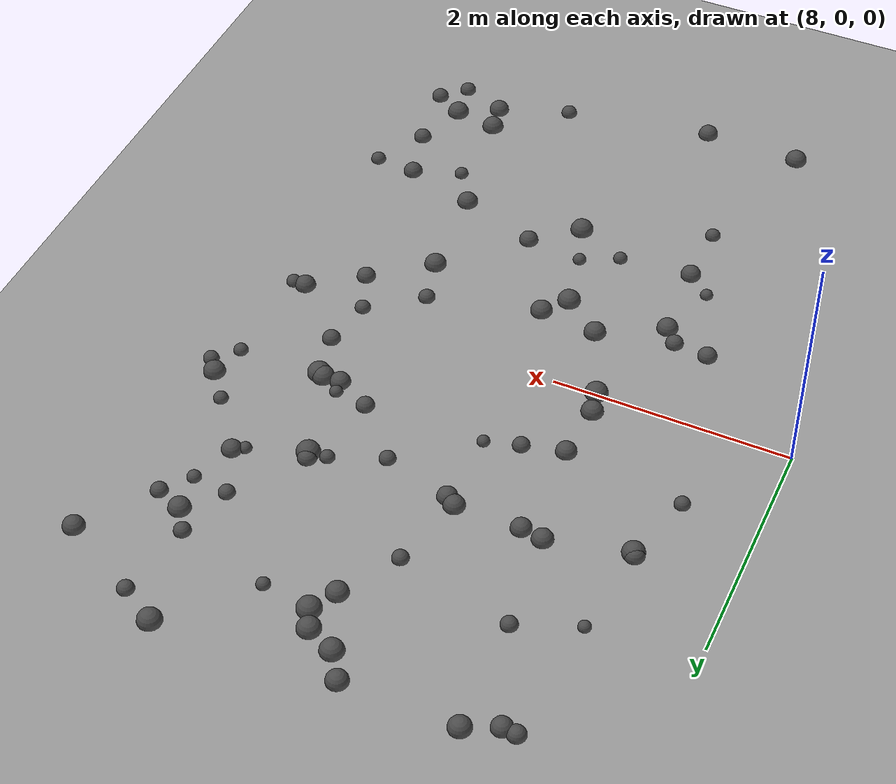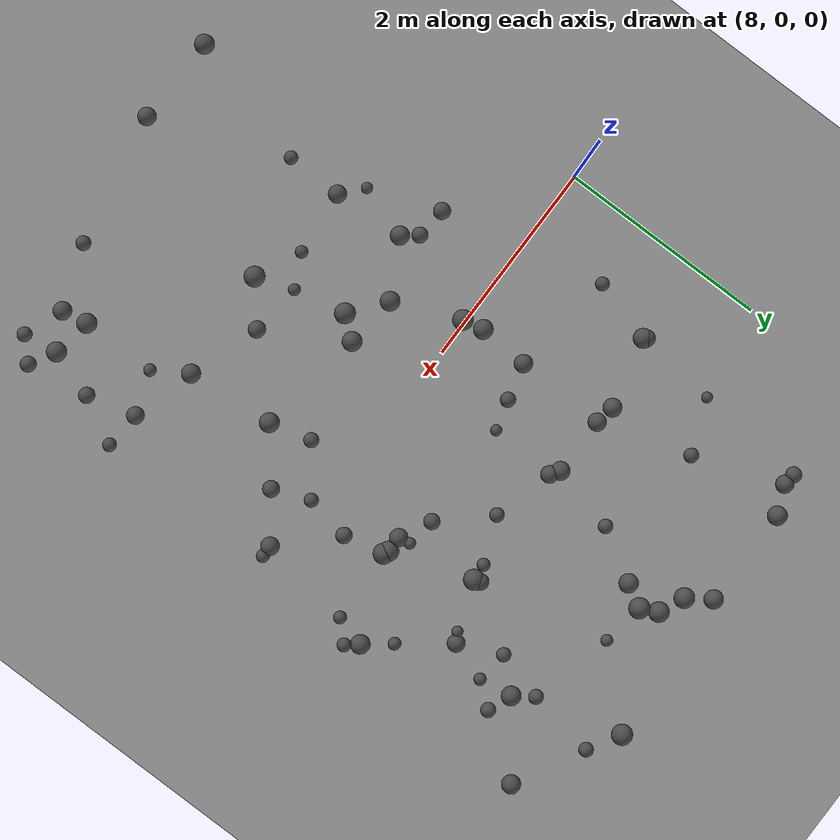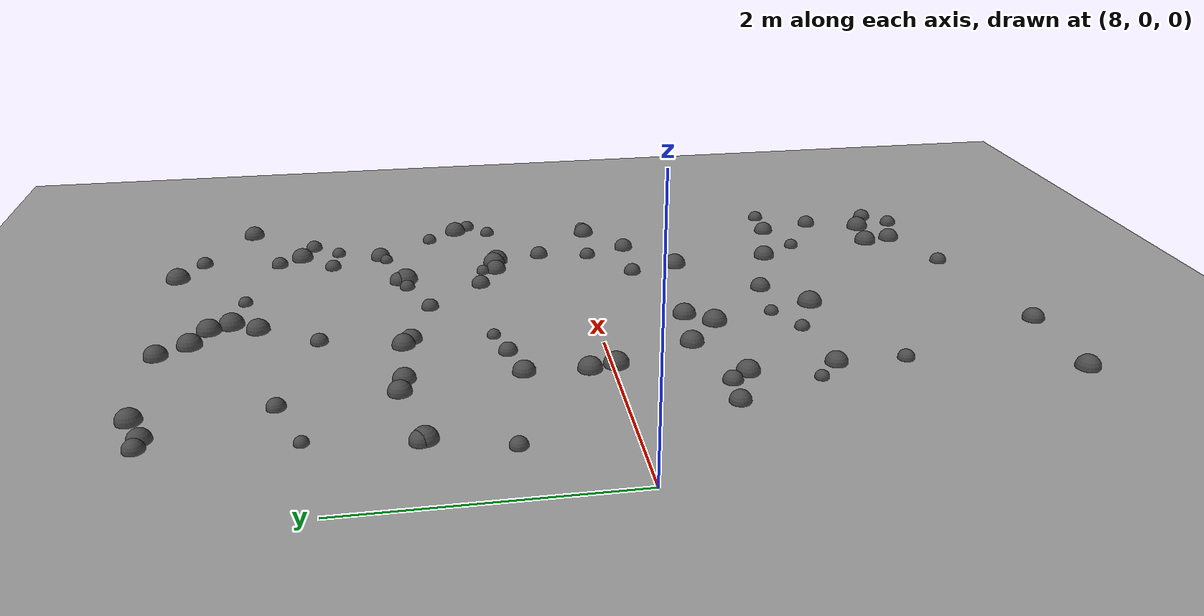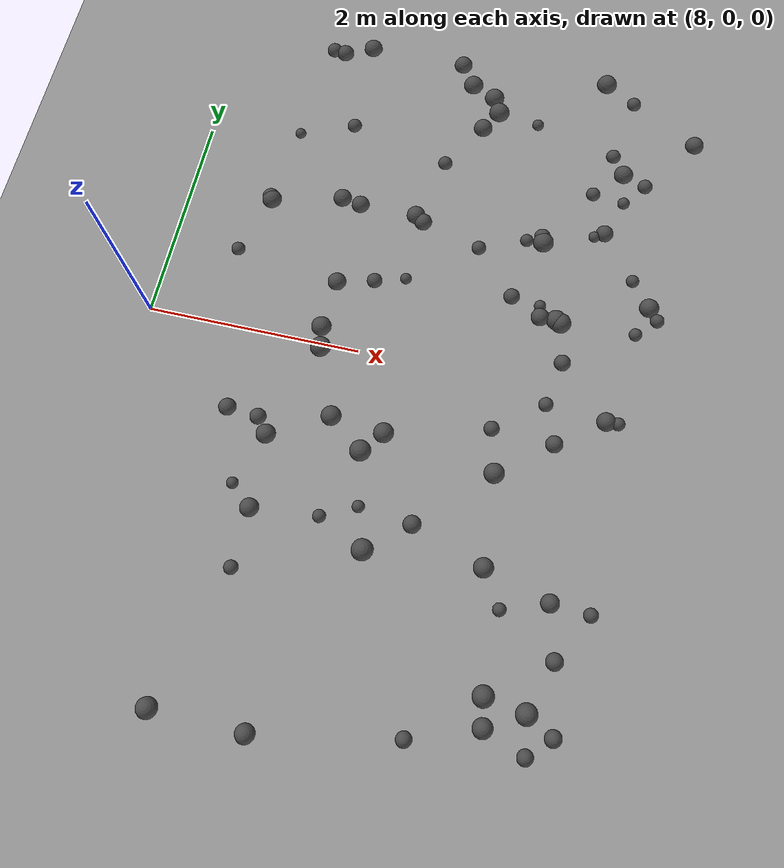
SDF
<sdf version="1.8">
 <world name="bumpy_world">
  <model name="ground_plane">
   <static>true</static>
   <link name="link">
    <collision name="collision">
     <geometry><plane><normal>0 0 1</normal><size>100 100</size></plane></geometry>
    </collision>
    <visual name="visual">
     <geometry><plane><normal>0 0 1</normal><size>100 100</size></plane></geometry>
     <material><ambient>0.6 0.6 0.6 1</ambient><diffuse>0.6 0.6 0.6 1</diffuse></material>
    </visual>
   </link>
  </model>
  <model name="bump_3">
   <static>true</static>
   <pose>11.931157695273809 1.6394047522858175 0.0 0 0 0</pose>
   <link name="link">
    <collision name="collision">
     <geometry><sphere><radius>0.053579488928655966</radius></sphere></geometry>
     <surface><friction><ode><mu>100.0</mu><mu2>100.0</mu2></ode></friction></surface>
    </collision>
    <visual name="visual">
     <geometry><sphere><radius>0.053579488928655966</radius></sphere></geometry>
     <material><ambient>0.3 0.3 0.3 1</ambient><diffuse>0.3 0.3 0.3 1</diffuse></material>
    </visual>
   </link>
  </model>
  <model name="bump_4">
   <static>true</static>
   <pose>12.55489104031081 1.0059284895138196 0.0 0 0 0</pose>
   <link name="link">
    <collision name="collision">
     <geometry><sphere><radius>0.09172294633652742</radius></sphere></geometry>
     <surface><friction><ode><mu>100.0</mu><mu2>100.0</mu2></ode></friction></surface>
    </collision>
    <visual name="visual">
     <geometry><sphere><radius>0.09172294633652742</radius></sphere></geometry>
     <material><ambient>0.3 0.3 0.3 1</ambient><diffuse>0.3 0.3 0.3 1</diffuse></material>
    </visual>
   </link>
  </model>
  <model name="bump_12">
   <static>true</static>
   <pose>11.522102334728567 -1.7018754114444579 0.0 0 0 0</pose>
   <link name="link">
    <collision name="collision">
     <geometry><sphere><radius>0.08945290259393307</radius></sphere></geometry>
     <surface><friction><ode><mu>100.0</mu><mu2>100.0</mu2></ode></friction></surface>
    </collision>
    <visual name="visual">
     <geometry><sphere><radius>0.08945290259393307</radius></sphere></geometry>
     <material><ambient>0.3 0.3 0.3 1</ambient><diffuse>0.3 0.3 0.3 1</diffuse></material>
    </visual>
   </link>
  </model>
  <model name="bump_14">
   <static>true</static>
   <pose>10.643117851737946 2.6129079449877457 0.0 0 0 0</pose>
   <link name="link">
    <collision name="collision">
     <geometry><sphere><radius>0.09134821140151704</radius></sphere></geometry>
     <surface><friction><ode><mu>100.0</mu><mu2>100.0</mu2></ode></friction></surface>
    </collision>
    <visual name="visual">
     <geometry><sphere><radius>0.09134821140151704</radius></sphere></geometry>
     <material><ambient>0.3 0.3 0.3 1</ambient><diffuse>0.3 0.3 0.3 1</diffuse></material>
    </visual>
   </link>
  </model>
  <model name="bump_16">
   <static>true</static>
   <pose>9.421385301899686 -1.6260992034511779 0.0 0 0 0</pose>
   <link name="link">
    <collision name="collision">
     <geometry><sphere><radius>0.08546456388983416</radius></sphere></geometry>
     <surface><friction><ode><mu>100.0</mu><mu2>100.0</mu2></ode></friction></surface>
    </collision>
    <visual name="visual">
     <geometry><sphere><radius>0.08546456388983416</radius></sphere></geometry>
     <material><ambient>0.3 0.3 0.3 1</ambient><diffuse>0.3 0.3 0.3 1</diffuse></material>
    </visual>
   </link>
  </model>
  <model name="bump_18">
   <static>true</static>
   <pose>12.022463642345118 1.693123177917606 0.0 0 0 0</pose>
   <link name="link">
    <collision name="collision">
     <geometry><sphere><radius>0.08342939061276286</radius></sphere></geometry>
     <surface><friction><ode><mu>100.0</mu><mu2>100.0</mu2></ode></friction></surface>
    </collision>
    <visual name="visual">
     <geometry><sphere><radius>0.08342939061276286</radius></sphere></geometry>
     <material><ambient>0.3 0.3 0.3 1</ambient><diffuse>0.3 0.3 0.3 1</diffuse></material>
    </visual>
   </link>
  </model>
  <model name="bump_26">
   <static>true</static>
   <pose>9.975213831209803 0.7341309147829511 0.0 0 0 0</pose>
   <link name="link">
    <collision name="collision">
     <geometry><sphere><radius>0.0721345764446053</radius></sphere></geometry>
     <surface><friction><ode><mu>100.0</mu><mu2>100.0</mu2></ode></friction></surface>
    </collision>
    <visual name="visual">
     <geometry><sphere><radius>0.0721345764446053</radius></sphere></geometry>
     <material><ambient>0.3 0.3 0.3 1</ambient><diffuse>0.3 0.3 0.3 1</diffuse></material>
    </visual>
   </link>
  </model>
  <model name="bump_37">
   <static>true</static>
   <pose>9.37552611108897 2.3650020926075372 0.0 0 0 0</pose>
   <link name="link">
    <collision name="collision">
     <geometry><sphere><radius>0.06940311289779658</radius></sphere></geometry>
     <surface><friction><ode><mu>100.0</mu><mu2>100.0</mu2></ode></friction></surface>
    </collision>
    <visual name="visual">
     <geometry><sphere><radius>0.06940311289779658</radius></sphere></geometry>
     <material><ambient>0.3 0.3 0.3 1</ambient><diffuse>0.3 0.3 0.3 1</diffuse></material>
    </visual>
   </link>
  </model>
  <model name="bump_39">
   <static>true</static>
   <pose>10.765315254485404 2.82722787600013 0.0 0 0 0</pose>
   <link name="link">
    <collision name="collision">
     <geometry><sphere><radius>0.09995415081091778</radius></sphere></geometry>
     <surface><friction><ode><mu>100.0</mu><mu2>100.0</mu2></ode></friction></surface>
    </collision>
    <visual name="visual">
     <geometry><sphere><radius>0.09995415081091778</radius></sphere></geometry>
     <material><ambient>0.3 0.3 0.3 1</ambient><diffuse>0.3 0.3 0.3 1</diffuse></material>
    </visual>
   </link>
  </model>
  <model name="bump_48">
   <static>true</static>
   <pose>10.243681844997505 -0.9185356339324291 0.0 0 0 0</pose>
   <link name="link">
    <collision name="collision">
     <geometry><sphere><radius>0.09749525561380185</radius></sphere></geometry>
     <surface><friction><ode><mu>100.0</mu><mu2>100.0</mu2></ode></friction></surface>
    </collision>
    <visual name="visual">
     <geometry><sphere><radius>0.09749525561380185</radius></sphere></geometry>
     <material><ambient>0.3 0.3 0.3 1</ambient><diffuse>0.3 0.3 0.3 1</diffuse></material>
    </visual>
   </link>
  </model>
  <model name="bump_51">
   <static>true</static>
   <pose>10.685210819470418 2.9885323724850545 0.0 0 0 0</pose>
   <link name="link">
    <collision name="collision">
     <geometry><sphere><radius>0.09602896417148336</radius></sphere></geometry>
     <surface><friction><ode><mu>100.0</mu><mu2>100.0</mu2></ode></friction></surface>
    </collision>
    <visual name="visual">
     <geometry><sphere><radius>0.09602896417148336</radius></sphere></geometry>
     <material><ambient>0.3 0.3 0.3 1</ambient><diffuse>0.3 0.3 0.3 1</diffuse></material>
    </visual>
   </link>
  </model>
  <model name="bump_66">
   <static>true</static>
   <pose>12.345960310114865 -2.9312546135932194 0.0 0 0 0</pose>
   <link name="link">
    <collision name="collision">
     <geometry><sphere><radius>0.07495913389079739</radius></sphere></geometry>
     <surface><friction><ode><mu>100.0</mu><mu2>100.0</mu2></ode></friction></surface>
    </collision>
    <visual name="visual">
     <geometry><sphere><radius>0.07495913389079739</radius></sphere></geometry>
     <material><ambient>0.3 0.3 0.3 1</ambient><diffuse>0.3 0.3 0.3 1</diffuse></material>
    </visual>
   </link>
  </model>
  <model name="bump_67">
   <static>true</static>
   <pose>9.380274728241485 -0.9470037858969937 0.0 0 0 0</pose>
   <link name="link">
    <collision name="collision">
     <geometry><sphere><radius>0.08968003674827485</radius></sphere></geometry>
     <surface><friction><ode><mu>100.0</mu><mu2>100.0</mu2></ode></friction></surface>
    </collision>
    <visual name="visual">
     <geometry><sphere><radius>0.08968003674827485</radius></sphere></geometry>
     <material><ambient>0.3 0.3 0.3 1</ambient><diffuse>0.3 0.3 0.3 1</diffuse></material>
    </visual>
   </link>
  </model>
  <model name="bump_79">
   <static>true</static>
   <pose>8.86918294274917 2.161989821667313 0.0 0 0 0</pose>
   <link name="link">
    <collision name="collision">
     <geometry><sphere><radius>0.05203512853501087</radius></sphere></geometry>
     <surface><friction><ode><mu>100.0</mu><mu2>100.0</mu2></ode></friction></surface>
    </collision>
    <visual name="visual">
     <geometry><sphere><radius>0.05203512853501087</radius></sphere></geometry>
     <material><ambient>0.3 0.3 0.3 1</ambient><diffuse>0.3 0.3 0.3 1</diffuse></material>
    </visual>
   </link>
  </model>
  <model name="bump_81">
   <static>true</static>
   <pose>12.150259302899732 2.062354442706466 0.0 0 0 0</pose>
   <link name="link">
    <collision name="collision">
     <geometry><sphere><radius>0.05849020861925602</radius></sphere></geometry>
     <surface><friction><ode><mu>100.0</mu><mu2>100.0</mu2></ode></friction></surface>
    </collision>
    <visual name="visual">
     <geometry><sphere><radius>0.05849020861925602</radius></sphere></geometry>
     <material><ambient>0.3 0.3 0.3 1</ambient><diffuse>0.3 0.3 0.3 1</diffuse></material>
    </visual>
   </link>
  </model>
  <model name="bump_84">
   <static>true</static>
   <pose>11.16845109739629 -3.195198413123346 0.0 0 0 0</pose>
   <link name="link">
    <collision name="collision">
     <geometry><sphere><radius>0.06951750288032212</radius></sphere></geometry>
     <surface><friction><ode><mu>100.0</mu><mu2>100.0</mu2></ode></friction></surface>
    </collision>
    <visual name="visual">
     <geometry><sphere><radius>0.06951750288032212</radius></sphere></geometry>
     <material><ambient>0.3 0.3 0.3 1</ambient><diffuse>0.3 0.3 0.3 1</diffuse></material>
    </visual>
   </link>
  </model>
  <model name="bump_90">
   <static>true</static>
   <pose>12.470294850923612 0.7114271344372263 0.0 0 0 0</pose>
   <link name="link">
    <collision name="collision">
     <geometry><sphere><radius>0.060873537010204704</radius></sphere></geometry>
     <surface><friction><ode><mu>100.0</mu><mu2>100.0</mu2></ode></friction></surface>
    </collision>
    <visual name="visual">
     <geometry><sphere><radius>0.060873537010204704</radius></sphere></geometry>
     <material><ambient>0.3 0.3 0.3 1</ambient><diffuse>0.3 0.3 0.3 1</diffuse></material>
    </visual>
   </link>
  </model>
  <model name="bump_94">
   <static>true</static>
   <pose>9.339777714532508 3.3177937117745886 0.0 0 0 0</pose>
   <link name="link">
    <collision name="collision">
     <geometry><sphere><radius>0.09153779249431396</radius></sphere></geometry>
     <surface><friction><ode><mu>100.0</mu><mu2>100.0</mu2></ode></friction></surface>
    </collision>
    <visual name="visual">
     <geometry><sphere><radius>0.09153779249431396</radius></sphere></geometry>
     <material><ambient>0.3 0.3 0.3 1</ambient><diffuse>0.3 0.3 0.3 1</diffuse></material>
    </visual>
   </link>
  </model>
  <model name="bump_95">
   <static>true</static>
   <pose>11.44830974139202 -0.8667503124085254 0.0 0 0 0</pose>
   <link name="link">
    <collision name="collision">
     <geometry><sphere><radius>0.09316347299102341</radius></sphere></geometry>
     <surface><friction><ode><mu>100.0</mu><mu2>100.0</mu2></ode></friction></surface>
    </collision>
    <visual name="visual">
     <geometry><sphere><radius>0.09316347299102341</radius></sphere></geometry>
     <material><ambient>0.3 0.3 0.3 1</ambient><diffuse>0.3 0.3 0.3 1</diffuse></material>
    </visual>
   </link>
  </model>
  <model name="bump_100">
   <static>true</static>
   <pose>11.46359094434346 1.473796945719414 0.0 0 0 0</pose>
   <link name="link">
    <collision name="collision">
     <geometry><sphere><radius>0.09870176413508978</radius></sphere></geometry>
     <surface><friction><ode><mu>100.0</mu><mu2>100.0</mu2></ode></friction></surface>
    </collision>
    <visual name="visual">
     <geometry><sphere><radius>0.09870176413508978</radius></sphere></geometry>
     <material><ambient>0.3 0.3 0.3 1</ambient><diffuse>0.3 0.3 0.3 1</diffuse></material>
    </visual>
   </link>
  </model>
  <model name="bump_101">
   <static>true</static>
   <pose>9.602728004214153 0.17101706781391002 0.0 0 0 0</pose>
   <link name="link">
    <collision name="collision">
     <geometry><sphere><radius>0.0929406134502781</radius></sphere></geometry>
     <surface><friction><ode><mu>100.0</mu><mu2>100.0</mu2></ode></friction></surface>
    </collision>
    <visual name="visual">
     <geometry><sphere><radius>0.0929406134502781</radius></sphere></geometry>
     <material><ambient>0.3 0.3 0.3 1</ambient><diffuse>0.3 0.3 0.3 1</diffuse></material>
    </visual>
   </link>
  </model>
  <model name="bump_103">
   <static>true</static>
   <pose>12.339285652895612 -0.18536038287272305 0.0 0 0 0</pose>
   <link name="link">
    <collision name="collision">
     <geometry><sphere><radius>0.08729885174590085</radius></sphere></geometry>
     <surface><friction><ode><mu>100.0</mu><mu2>100.0</mu2></ode></friction></surface>
    </collision>
    <visual name="visual">
     <geometry><sphere><radius>0.08729885174590085</radius></sphere></geometry>
     <material><ambient>0.3 0.3 0.3 1</ambient><diffuse>0.3 0.3 0.3 1</diffuse></material>
    </visual>
   </link>
  </model>
  <model name="bump_104">
   <static>true</static>
   <pose>10.293851109572861 3.315080666916348 0.0 0 0 0</pose>
   <link name="link">
    <collision name="collision">
     <geometry><sphere><radius>0.09003179288780151</radius></sphere></geometry>
     <surface><friction><ode><mu>100.0</mu><mu2>100.0</mu2></ode></friction></surface>
    </collision>
    <visual name="visual">
     <geometry><sphere><radius>0.09003179288780151</radius></sphere></geometry>
     <material><ambient>0.3 0.3 0.3 1</ambient><diffuse>0.3 0.3 0.3 1</diffuse></material>
    </visual>
   </link>
  </model>
  <model name="bump_105">
   <static>true</static>
   <pose>11.85584345583618 0.2907139552028344 0.0 0 0 0</pose>
   <link name="link">
    <collision name="collision">
     <geometry><sphere><radius>0.07667231170759516</radius></sphere></geometry>
     <surface><friction><ode><mu>100.0</mu><mu2>100.0</mu2></ode></friction></surface>
    </collision>
    <visual name="visual">
     <geometry><sphere><radius>0.07667231170759516</radius></sphere></geometry>
     <material><ambient>0.3 0.3 0.3 1</ambient><diffuse>0.3 0.3 0.3 1</diffuse></material>
    </visual>
   </link>
  </model>
  <model name="bump_109">
   <static>true</static>
   <pose>10.349724738445085 -1.4141345158926493 0.0 0 0 0</pose>
   <link name="link">
    <collision name="collision">
     <geometry><sphere><radius>0.056468212636025604</radius></sphere></geometry>
     <surface><friction><ode><mu>100.0</mu><mu2>100.0</mu2></ode></friction></surface>
    </collision>
    <visual name="visual">
     <geometry><sphere><radius>0.056468212636025604</radius></sphere></geometry>
     <material><ambient>0.3 0.3 0.3 1</ambient><diffuse>0.3 0.3 0.3 1</diffuse></material>
    </visual>
   </link>
  </model>
  <model name="bump_116">
   <static>true</static>
   <pose>11.725891049751603 0.700855609914143 0.0 0 0 0</pose>
   <link name="link">
    <collision name="collision">
     <geometry><sphere><radius>0.09510083879291706</radius></sphere></geometry>
     <surface><friction><ode><mu>100.0</mu><mu2>100.0</mu2></ode></friction></surface>
    </collision>
    <visual name="visual">
     <geometry><sphere><radius>0.09510083879291706</radius></sphere></geometry>
     <material><ambient>0.3 0.3 0.3 1</ambient><diffuse>0.3 0.3 0.3 1</diffuse></material>
    </visual>
   </link>
  </model>
  <model name="bump_134">
   <static>true</static>
   <pose>11.304067340647887 1.462516193818379 0.0 0 0 0</pose>
   <link name="link">
    <collision name="collision">
     <geometry><sphere><radius>0.06206174898243519</radius></sphere></geometry>
     <surface><friction><ode><mu>100.0</mu><mu2>100.0</mu2></ode></friction></surface>
    </collision>
    <visual name="visual">
     <geometry><sphere><radius>0.06206174898243519</radius></sphere></geometry>
     <material><ambient>0.3 0.3 0.3 1</ambient><diffuse>0.3 0.3 0.3 1</diffuse></material>
    </visual>
   </link>
  </model>
  <model name="bump_135">
   <static>true</static>
   <pose>10.036906422908984 -1.5686002306002007 0.0 0 0 0</pose>
   <link name="link">
    <collision name="collision">
     <geometry><sphere><radius>0.05939525208642443</radius></sphere></geometry>
     <surface><friction><ode><mu>100.0</mu><mu2>100.0</mu2></ode></friction></surface>
    </collision>
    <visual name="visual">
     <geometry><sphere><radius>0.05939525208642443</radius></sphere></geometry>
     <material><ambient>0.3 0.3 0.3 1</ambient><diffuse>0.3 0.3 0.3 1</diffuse></material>
    </visual>
   </link>
  </model>
  <model name="bump_140">
   <static>true</static>
   <pose>12.447782507048643 -0.18364220399453046 0.0 0 0 0</pose>
   <link name="link">
    <collision name="collision">
     <geometry><sphere><radius>0.06248908621980998</radius></sphere></geometry>
     <surface><friction><ode><mu>100.0</mu><mu2>100.0</mu2></ode></friction></surface>
    </collision>
    <visual name="visual">
     <geometry><sphere><radius>0.06248908621980998</radius></sphere></geometry>
     <material><ambient>0.3 0.3 0.3 1</ambient><diffuse>0.3 0.3 0.3 1</diffuse></material>
    </visual>
   </link>
  </model>
  <model name="bump_142">
   <static>true</static>
   <pose>9.461053615978589 1.5341252764719329 0.0 0 0 0</pose>
   <link name="link">
    <collision name="collision">
     <geometry><sphere><radius>0.08827798105143501</radius></sphere></geometry>
     <surface><friction><ode><mu>100.0</mu><mu2>100.0</mu2></ode></friction></surface>
    </collision>
    <visual name="visual">
     <geometry><sphere><radius>0.08827798105143501</radius></sphere></geometry>
     <material><ambient>0.3 0.3 0.3 1</ambient><diffuse>0.3 0.3 0.3 1</diffuse></material>
    </visual>
   </link>
  </model>
  <model name="bump_145">
   <static>true</static>
   <pose>9.630475805571534 0.6481993386745915 0.0 0 0 0</pose>
   <link name="link">
    <collision name="collision">
     <geometry><sphere><radius>0.08640588313762611</radius></sphere></geometry>
     <surface><friction><ode><mu>100.0</mu><mu2>100.0</mu2></ode></friction></surface>
    </collision>
    <visual name="visual">
     <geometry><sphere><radius>0.08640588313762611</radius></sphere></geometry>
     <material><ambient>0.3 0.3 0.3 1</ambient><diffuse>0.3 0.3 0.3 1</diffuse></material>
    </visual>
   </link>
  </model>
  <model name="bump_158">
   <static>true</static>
   <pose>12.362146809675545 1.2493728557327897 0.0 0 0 0</pose>
   <link name="link">
    <collision name="collision">
     <geometry><sphere><radius>0.060736272898503654</radius></sphere></geometry>
     <surface><friction><ode><mu>100.0</mu><mu2>100.0</mu2></ode></friction></surface>
    </collision>
    <visual name="visual">
     <geometry><sphere><radius>0.060736272898503654</radius></sphere></geometry>
     <material><ambient>0.3 0.3 0.3 1</ambient><diffuse>0.3 0.3 0.3 1</diffuse></material>
    </visual>
   </link>
  </model>
  <model name="bump_159">
   <static>true</static>
   <pose>11.77274683103977 -2.9759893234993946 0.0 0 0 0</pose>
   <link name="link">
    <collision name="collision">
     <geometry><sphere><radius>0.08742741335790126</radius></sphere></geometry>
     <surface><friction><ode><mu>100.0</mu><mu2>100.0</mu2></ode></friction></surface>
    </collision>
    <visual name="visual">
     <geometry><sphere><radius>0.08742741335790126</radius></sphere></geometry>
     <material><ambient>0.3 0.3 0.3 1</ambient><diffuse>0.3 0.3 0.3 1</diffuse></material>
    </visual>
   </link>
  </model>
  <model name="bump_165">
   <static>true</static>
   <pose>12.10117406434978 2.378775708718787 0.0 0 0 0</pose>
   <link name="link">
    <collision name="collision">
     <geometry><sphere><radius>0.09219105023177405</radius></sphere></geometry>
     <surface><friction><ode><mu>100.0</mu><mu2>100.0</mu2></ode></friction></surface>
    </collision>
    <visual name="visual">
     <geometry><sphere><radius>0.09219105023177405</radius></sphere></geometry>
     <material><ambient>0.3 0.3 0.3 1</ambient><diffuse>0.3 0.3 0.3 1</diffuse></material>
    </visual>
   </link>
  </model>
  <model name="bump_168">
   <static>true</static>
   <pose>11.722461949809002 -2.0184259855428026 0.0 0 0 0</pose>
   <link name="link">
    <collision name="collision">
     <geometry><sphere><radius>0.0598657461114841</radius></sphere></geometry>
     <surface><friction><ode><mu>100.0</mu><mu2>100.0</mu2></ode></friction></surface>
    </collision>
    <visual name="visual">
     <geometry><sphere><radius>0.0598657461114841</radius></sphere></geometry>
     <material><ambient>0.3 0.3 0.3 1</ambient><diffuse>0.3 0.3 0.3 1</diffuse></material>
    </visual>
   </link>
  </model>
  <model name="bump_172">
   <static>true</static>
   <pose>11.771604183650926 0.6775102252893017 0.0 0 0 0</pose>
   <link name="link">
    <collision name="collision">
     <geometry><sphere><radius>0.09740184018776255</radius></sphere></geometry>
     <surface><friction><ode><mu>100.0</mu><mu2>100.0</mu2></ode></friction></surface>
    </collision>
    <visual name="visual">
     <geometry><sphere><radius>0.09740184018776255</radius></sphere></geometry>
     <material><ambient>0.3 0.3 0.3 1</ambient><diffuse>0.3 0.3 0.3 1</diffuse></material>
    </visual>
   </link>
  </model>
  <model name="bump_173">
   <static>true</static>
   <pose>12.102051137754005 -2.793631578943085 0.0 0 0 0</pose>
   <link name="link">
    <collision name="collision">
     <geometry><sphere><radius>0.09431592921876161</radius></sphere></geometry>
     <surface><friction><ode><mu>100.0</mu><mu2>100.0</mu2></ode></friction></surface>
    </collision>
    <visual name="visual">
     <geometry><sphere><radius>0.09431592921876161</radius></sphere></geometry>
     <material><ambient>0.3 0.3 0.3 1</ambient><diffuse>0.3 0.3 0.3 1</diffuse></material>
    </visual>
   </link>
  </model>
  <model name="bump_187">
   <static>true</static>
   <pose>11.729512980684325 -2.731585056304593 0.0 0 0 0</pose>
   <link name="link">
    <collision name="collision">
     <geometry><sphere><radius>0.09421577457591655</radius></sphere></geometry>
     <surface><friction><ode><mu>100.0</mu><mu2>100.0</mu2></ode></friction></surface>
    </collision>
    <visual name="visual">
     <geometry><sphere><radius>0.09421577457591655</radius></sphere></geometry>
     <material><ambient>0.3 0.3 0.3 1</ambient><diffuse>0.3 0.3 0.3 1</diffuse></material>
    </visual>
   </link>
  </model>
  <model name="bump_189">
   <static>true</static>
   <pose>8.620963889333193 0.7835367878075044 0.0 0 0 0</pose>
   <link name="link">
    <collision name="collision">
     <geometry><sphere><radius>0.06525789285431959</radius></sphere></geometry>
     <surface><friction><ode><mu>100.0</mu><mu2>100.0</mu2></ode></friction></surface>
    </collision>
    <visual name="visual">
     <geometry><sphere><radius>0.06525789285431959</radius></sphere></geometry>
     <material><ambient>0.3 0.3 0.3 1</ambient><diffuse>0.3 0.3 0.3 1</diffuse></material>
    </visual>
   </link>
  </model>
  <model name="bump_197">
   <static>true</static>
   <pose>10.287924803471403 1.4444007102789262 0.0 0 0 0</pose>
   <link name="link">
    <collision name="collision">
     <geometry><sphere><radius>0.08360877443069457</radius></sphere></geometry>
     <surface><friction><ode><mu>100.0</mu><mu2>100.0</mu2></ode></friction></surface>
    </collision>
    <visual name="visual">
     <geometry><sphere><radius>0.08360877443069457</radius></sphere></geometry>
     <material><ambient>0.3 0.3 0.3 1</ambient><diffuse>0.3 0.3 0.3 1</diffuse></material>
    </visual>
   </link>
  </model>
  <model name="bump_202">
   <static>true</static>
   <pose>12.080228845839976 3.215552561306695 0.0 0 0 0</pose>
   <link name="link">
    <collision name="collision">
     <geometry><sphere><radius>0.06906153119724899</radius></sphere></geometry>
     <surface><friction><ode><mu>100.0</mu><mu2>100.0</mu2></ode></friction></surface>
    </collision>
    <visual name="visual">
     <geometry><sphere><radius>0.06906153119724899</radius></sphere></geometry>
     <material><ambient>0.3 0.3 0.3 1</ambient><diffuse>0.3 0.3 0.3 1</diffuse></material>
    </visual>
   </link>
  </model>
  <model name="bump_213">
   <static>true</static>
   <pose>11.444137845172884 1.533381587831176 0.0 0 0 0</pose>
   <link name="link">
    <collision name="collision">
     <geometry><sphere><radius>0.07798949228344285</radius></sphere></geometry>
     <surface><friction><ode><mu>100.0</mu><mu2>100.0</mu2></ode></friction></surface>
    </collision>
    <visual name="visual">
     <geometry><sphere><radius>0.07798949228344285</radius></sphere></geometry>
     <material><ambient>0.3 0.3 0.3 1</ambient><diffuse>0.3 0.3 0.3 1</diffuse></material>
    </visual>
   </link>
  </model>
  <model name="bump_229">
   <static>true</static>
   <pose>10.357540376770748 2.133530619472803 0.0 0 0 0</pose>
   <link name="link">
    <collision name="collision">
     <geometry><sphere><radius>0.06843603621288707</radius></sphere></geometry>
     <surface><friction><ode><mu>100.0</mu><mu2>100.0</mu2></ode></friction></surface>
    </collision>
    <visual name="visual">
     <geometry><sphere><radius>0.06843603621288707</radius></sphere></geometry>
     <material><ambient>0.3 0.3 0.3 1</ambient><diffuse>0.3 0.3 0.3 1</diffuse></material>
    </visual>
   </link>
  </model>
  <model name="bump_231">
   <static>true</static>
   <pose>10.445338682625078 3.0956281729322717 0.0 0 0 0</pose>
   <link name="link">
    <collision name="collision">
     <geometry><sphere><radius>0.09647434406575874</radius></sphere></geometry>
     <surface><friction><ode><mu>100.0</mu><mu2>100.0</mu2></ode></friction></surface>
    </collision>
    <visual name="visual">
     <geometry><sphere><radius>0.09647434406575874</radius></sphere></geometry>
     <material><ambient>0.3 0.3 0.3 1</ambient><diffuse>0.3 0.3 0.3 1</diffuse></material>
    </visual>
   </link>
  </model>
  <model name="bump_232">
   <static>true</static>
   <pose>12.484201638024972 -1.9010494473073933 0.0 0 0 0</pose>
   <link name="link">
    <collision name="collision">
     <geometry><sphere><radius>0.06511363267354607</radius></sphere></geometry>
     <surface><friction><ode><mu>100.0</mu><mu2>100.0</mu2></ode></friction></surface>
    </collision>
    <visual name="visual">
     <geometry><sphere><radius>0.06511363267354607</radius></sphere></geometry>
     <material><ambient>0.3 0.3 0.3 1</ambient><diffuse>0.3 0.3 0.3 1</diffuse></material>
    </visual>
   </link>
  </model>
  <model name="bump_233">
   <static>true</static>
   <pose>12.740752363243653 2.8623034706826385 0.0 0 0 0</pose>
   <link name="link">
    <collision name="collision">
     <geometry><sphere><radius>0.08938730292623431</radius></sphere></geometry>
     <surface><friction><ode><mu>100.0</mu><mu2>100.0</mu2></ode></friction></surface>
    </collision>
    <visual name="visual">
     <geometry><sphere><radius>0.08938730292623431</radius></sphere></geometry>
     <material><ambient>0.3 0.3 0.3 1</ambient><diffuse>0.3 0.3 0.3 1</diffuse></material>
    </visual>
   </link>
  </model>
  <model name="bump_236">
   <static>true</static>
   <pose>10.202448987006607 1.5034565984466965 0.0 0 0 0</pose>
   <link name="link">
    <collision name="collision">
     <geometry><sphere><radius>0.08880347773193512</radius></sphere></geometry>
     <surface><friction><ode><mu>100.0</mu><mu2>100.0</mu2></ode></friction></surface>
    </collision>
    <visual name="visual">
     <geometry><sphere><radius>0.08880347773193512</radius></sphere></geometry>
     <material><ambient>0.3 0.3 0.3 1</ambient><diffuse>0.3 0.3 0.3 1</diffuse></material>
    </visual>
   </link>
  </model>
  <model name="bump_240">
   <static>true</static>
   <pose>9.645550585344436 -0.028548482826183275 0.0 0 0 0</pose>
   <link name="link">
    <collision name="collision">
     <geometry><sphere><radius>0.0966244911769895</radius></sphere></geometry>
     <surface><friction><ode><mu>100.0</mu><mu2>100.0</mu2></ode></friction></surface>
    </collision>
    <visual name="visual">
     <geometry><sphere><radius>0.0966244911769895</radius></sphere></geometry>
     <material><ambient>0.3 0.3 0.3 1</ambient><diffuse>0.3 0.3 0.3 1</diffuse></material>
    </visual>
   </link>
  </model>
  <model name="bump_242">
   <static>true</static>
   <pose>12.150760016133766 -3.121018844068376 0.0 0 0 0</pose>
   <link name="link">
    <collision name="collision">
     <geometry><sphere><radius>0.07045628431411555</radius></sphere></geometry>
     <surface><friction><ode><mu>100.0</mu><mu2>100.0</mu2></ode></friction></surface>
    </collision>
    <visual name="visual">
     <geometry><sphere><radius>0.07045628431411555</radius></sphere></geometry>
     <material><ambient>0.3 0.3 0.3 1</ambient><diffuse>0.3 0.3 0.3 1</diffuse></material>
    </visual>
   </link>
  </model>
  <model name="bump_243">
   <static>true</static>
   <pose>9.26686732295711 -0.8041577968982088 0.0 0 0 0</pose>
   <link name="link">
    <collision name="collision">
     <geometry><sphere><radius>0.07537681462995564</radius></sphere></geometry>
     <surface><friction><ode><mu>100.0</mu><mu2>100.0</mu2></ode></friction></surface>
    </collision>
    <visual name="visual">
     <geometry><sphere><radius>0.07537681462995564</radius></sphere></geometry>
     <material><ambient>0.3 0.3 0.3 1</ambient><diffuse>0.3 0.3 0.3 1</diffuse></material>
    </visual>
   </link>
  </model>
  <model name="bump_248">
   <static>true</static>
   <pose>10.841677908294773 -1.4671412317482138 0.0 0 0 0</pose>
   <link name="link">
    <collision name="collision">
     <geometry><sphere><radius>0.08147314603473475</radius></sphere></geometry>
     <surface><friction><ode><mu>100.0</mu><mu2>100.0</mu2></ode></friction></surface>
    </collision>
    <visual name="visual">
     <geometry><sphere><radius>0.08147314603473475</radius></sphere></geometry>
     <material><ambient>0.3 0.3 0.3 1</ambient><diffuse>0.3 0.3 0.3 1</diffuse></material>
    </visual>
   </link>
  </model>
  <model name="bump_262">
   <static>true</static>
   <pose>10.869832250500112 1.285429152217569 0.0 0 0 0</pose>
   <link name="link">
    <collision name="collision">
     <geometry><sphere><radius>0.0686412525122013</radius></sphere></geometry>
     <surface><friction><ode><mu>100.0</mu><mu2>100.0</mu2></ode></friction></surface>
    </collision>
    <visual name="visual">
     <geometry><sphere><radius>0.0686412525122013</radius></sphere></geometry>
     <material><ambient>0.3 0.3 0.3 1</ambient><diffuse>0.3 0.3 0.3 1</diffuse></material>
    </visual>
   </link>
  </model>
  <model name="bump_263">
   <static>true</static>
   <pose>12.251120798853135 -2.3377577240983847 0.0 0 0 0</pose>
   <link name="link">
    <collision name="collision">
     <geometry><sphere><radius>0.07687454901882845</radius></sphere></geometry>
     <surface><friction><ode><mu>100.0</mu><mu2>100.0</mu2></ode></friction></surface>
    </collision>
    <visual name="visual">
     <geometry><sphere><radius>0.07687454901882845</radius></sphere></geometry>
     <material><ambient>0.3 0.3 0.3 1</ambient><diffuse>0.3 0.3 0.3 1</diffuse></material>
    </visual>
   </link>
  </model>
  <model name="bump_267">
   <static>true</static>
   <pose>9.215958816578883 -1.4454193821566252 0.0 0 0 0</pose>
   <link name="link">
    <collision name="collision">
     <geometry><sphere><radius>0.05408980200646866</radius></sphere></geometry>
     <surface><friction><ode><mu>100.0</mu><mu2>100.0</mu2></ode></friction></surface>
    </collision>
    <visual name="visual">
     <geometry><sphere><radius>0.05408980200646866</radius></sphere></geometry>
     <material><ambient>0.3 0.3 0.3 1</ambient><diffuse>0.3 0.3 0.3 1</diffuse></material>
    </visual>
   </link>
  </model>
  <model name="bump_268">
   <static>true</static>
   <pose>11.345220304202634 -0.46800458743034756 0.0 0 0 0</pose>
   <link name="link">
    <collision name="collision">
     <geometry><sphere><radius>0.07103968128728652</radius></sphere></geometry>
     <surface><friction><ode><mu>100.0</mu><mu2>100.0</mu2></ode></friction></surface>
    </collision>
    <visual name="visual">
     <geometry><sphere><radius>0.07103968128728652</radius></sphere></geometry>
     <material><ambient>0.3 0.3 0.3 1</ambient><diffuse>0.3 0.3 0.3 1</diffuse></material>
    </visual>
   </link>
  </model>
  <model name="bump_270">
   <static>true</static>
   <pose>11.971645814784678 2.5644267526807774 0.0 0 0 0</pose>
   <link name="link">
    <collision name="collision">
     <geometry><sphere><radius>0.07000651829851089</radius></sphere></geometry>
     <surface><friction><ode><mu>100.0</mu><mu2>100.0</mu2></ode></friction></surface>
    </collision>
    <visual name="visual">
     <geometry><sphere><radius>0.07000651829851089</radius></sphere></geometry>
     <material><ambient>0.3 0.3 0.3 1</ambient><diffuse>0.3 0.3 0.3 1</diffuse></material>
    </visual>
   </link>
  </model>
  <model name="bump_272">
   <static>true</static>
   <pose>12.13026481963899 -1.876038705480815 0.0 0 0 0</pose>
   <link name="link">
    <collision name="collision">
     <geometry><sphere><radius>0.08240594559663827</radius></sphere></geometry>
     <surface><friction><ode><mu>100.0</mu><mu2>100.0</mu2></ode></friction></surface>
    </collision>
    <visual name="visual">
     <geometry><sphere><radius>0.08240594559663827</radius></sphere></geometry>
     <material><ambient>0.3 0.3 0.3 1</ambient><diffuse>0.3 0.3 0.3 1</diffuse></material>
    </visual>
   </link>
  </model>
  <model name="bump_274">
   <static>true</static>
   <pose>9.908964447528842 -0.6584061260861285 0.0 0 0 0</pose>
   <link name="link">
    <collision name="collision">
     <geometry><sphere><radius>0.0925049512796009</radius></sphere></geometry>
     <surface><friction><ode><mu>100.0</mu><mu2>100.0</mu2></ode></friction></surface>
    </collision>
    <visual name="visual">
     <geometry><sphere><radius>0.0925049512796009</radius></sphere></geometry>
     <material><ambient>0.3 0.3 0.3 1</ambient><diffuse>0.3 0.3 0.3 1</diffuse></material>
    </visual>
   </link>
  </model>
  <model name="bump_284">
   <static>true</static>
   <pose>11.919818300130778 -0.4910195783246931 0.0 0 0 0</pose>
   <link name="link">
    <collision name="collision">
     <geometry><sphere><radius>0.07978285634179105</radius></sphere></geometry>
     <surface><friction><ode><mu>100.0</mu><mu2>100.0</mu2></ode></friction></surface>
    </collision>
    <visual name="visual">
     <geometry><sphere><radius>0.07978285634179105</radius></sphere></geometry>
     <material><ambient>0.3 0.3 0.3 1</ambient><diffuse>0.3 0.3 0.3 1</diffuse></material>
    </visual>
   </link>
  </model>
  <model name="bump_289">
   <static>true</static>
   <pose>8.79102821979557 1.3752677617184421 0.0 0 0 0</pose>
   <link name="link">
    <collision name="collision">
     <geometry><sphere><radius>0.09314059547227657</radius></sphere></geometry>
     <surface><friction><ode><mu>100.0</mu><mu2>100.0</mu2></ode></friction></surface>
    </collision>
    <visual name="visual">
     <geometry><sphere><radius>0.09314059547227657</radius></sphere></geometry>
     <material><ambient>0.3 0.3 0.3 1</ambient><diffuse>0.3 0.3 0.3 1</diffuse></material>
    </visual>
   </link>
  </model>
  <model name="bump_294">
   <static>true</static>
   <pose>11.274197719632749 0.8502472242595296 0.0 0 0 0</pose>
   <link name="link">
    <collision name="collision">
     <geometry><sphere><radius>0.07650703282395738</radius></sphere></geometry>
     <surface><friction><ode><mu>100.0</mu><mu2>100.0</mu2></ode></friction></surface>
    </collision>
    <visual name="visual">
     <geometry><sphere><radius>0.07650703282395738</radius></sphere></geometry>
     <material><ambient>0.3 0.3 0.3 1</ambient><diffuse>0.3 0.3 0.3 1</diffuse></material>
    </visual>
   </link>
  </model>
  <model name="bump_296">
   <static>true</static>
   <pose>10.4724543777543 -1.7743581710781697 0.0 0 0 0</pose>
   <link name="link">
    <collision name="collision">
     <geometry><sphere><radius>0.09774899070574254</radius></sphere></geometry>
     <surface><friction><ode><mu>100.0</mu><mu2>100.0</mu2></ode></friction></surface>
    </collision>
    <visual name="visual">
     <geometry><sphere><radius>0.09774899070574254</radius></sphere></geometry>
     <material><ambient>0.3 0.3 0.3 1</ambient><diffuse>0.3 0.3 0.3 1</diffuse></material>
    </visual>
   </link>
  </model>
  <model name="bump_297">
   <static>true</static>
   <pose>11.844883732446249 2.0993086460048715 0.0 0 0 0</pose>
   <link name="link">
    <collision name="collision">
     <geometry><sphere><radius>0.06794694135600157</radius></sphere></geometry>
     <surface><friction><ode><mu>100.0</mu><mu2>100.0</mu2></ode></friction></surface>
    </collision>
    <visual name="visual">
     <geometry><sphere><radius>0.06794694135600157</radius></sphere></geometry>
     <material><ambient>0.3 0.3 0.3 1</ambient><diffuse>0.3 0.3 0.3 1</diffuse></material>
    </visual>
   </link>
  </model>
  <model name="bump_299">
   <static>true</static>
   <pose>11.175525610619307 2.767035962658036 0.0 0 0 0</pose>
   <link name="link">
    <collision name="collision">
     <geometry><sphere><radius>0.057042428935046144</radius></sphere></geometry>
     <surface><friction><ode><mu>100.0</mu><mu2>100.0</mu2></ode></friction></surface>
    </collision>
    <visual name="visual">
     <geometry><sphere><radius>0.057042428935046144</radius></sphere></geometry>
     <material><ambient>0.3 0.3 0.3 1</ambient><diffuse>0.3 0.3 0.3 1</diffuse></material>
    </visual>
   </link>
  </model>
  <model name="bump_305">
   <static>true</static>
   <pose>11.572391415793062 0.6987042877966445 0.0 0 0 0</pose>
   <link name="link">
    <collision name="collision">
     <geometry><sphere><radius>0.08587289369745973</radius></sphere></geometry>
     <surface><friction><ode><mu>100.0</mu><mu2>100.0</mu2></ode></friction></surface>
    </collision>
    <visual name="visual">
     <geometry><sphere><radius>0.08587289369745973</radius></sphere></geometry>
     <material><ambient>0.3 0.3 0.3 1</ambient><diffuse>0.3 0.3 0.3 1</diffuse></material>
    </visual>
   </link>
  </model>
  <model name="bump_310">
   <static>true</static>
   <pose>8.955233192282162 3.2117261416396143 0.0 0 0 0</pose>
   <link name="link">
    <collision name="collision">
     <geometry><sphere><radius>0.07558549215337237</radius></sphere></geometry>
     <surface><friction><ode><mu>100.0</mu><mu2>100.0</mu2></ode></friction></surface>
    </collision>
    <visual name="visual">
     <geometry><sphere><radius>0.07558549215337237</radius></sphere></geometry>
     <material><ambient>0.3 0.3 0.3 1</ambient><diffuse>0.3 0.3 0.3 1</diffuse></material>
    </visual>
   </link>
  </model>
  <model name="bump_316">
   <static>true</static>
   <pose>12.328632746623745 2.2906170757434205 0.0 0 0 0</pose>
   <link name="link">
    <collision name="collision">
     <geometry><sphere><radius>0.071444376223748</radius></sphere></geometry>
     <surface><friction><ode><mu>100.0</mu><mu2>100.0</mu2></ode></friction></surface>
    </collision>
    <visual name="visual">
     <geometry><sphere><radius>0.071444376223748</radius></sphere></geometry>
     <material><ambient>0.3 0.3 0.3 1</ambient><diffuse>0.3 0.3 0.3 1</diffuse></material>
    </visual>
   </link>
  </model>
  <model name="bump_320">
   <static>true</static>
   <pose>9.41278814003903 -2.160982691590876 0.0 0 0 0</pose>
   <link name="link">
    <collision name="collision">
     <geometry><sphere><radius>0.06429198276842539</radius></sphere></geometry>
     <surface><friction><ode><mu>100.0</mu><mu2>100.0</mu2></ode></friction></surface>
    </collision>
    <visual name="visual">
     <geometry><sphere><radius>0.06429198276842539</radius></sphere></geometry>
     <material><ambient>0.3 0.3 0.3 1</ambient><diffuse>0.3 0.3 0.3 1</diffuse></material>
    </visual>
   </link>
  </model>
  <model name="bump_321">
   <static>true</static>
   <pose>9.649534601283875 1.5019892646732291 0.0 0 0 0</pose>
   <link name="link">
    <collision name="collision">
     <geometry><sphere><radius>0.08579171074123729</radius></sphere></geometry>
     <surface><friction><ode><mu>100.0</mu><mu2>100.0</mu2></ode></friction></surface>
    </collision>
    <visual name="visual">
     <geometry><sphere><radius>0.08579171074123729</radius></sphere></geometry>
     <material><ambient>0.3 0.3 0.3 1</ambient><diffuse>0.3 0.3 0.3 1</diffuse></material>
    </visual>
   </link>
  </model>
  <model name="bump_325">
   <static>true</static>
   <pose>12.647544014583096 0.8912326399582797 0.0 0 0 0</pose>
   <link name="link">
    <collision name="collision">
     <geometry><sphere><radius>0.06597174144141243</radius></sphere></geometry>
     <surface><friction><ode><mu>100.0</mu><mu2>100.0</mu2></ode></friction></surface>
    </collision>
    <visual name="visual">
     <geometry><sphere><radius>0.06597174144141243</radius></sphere></geometry>
     <material><ambient>0.3 0.3 0.3 1</ambient><diffuse>0.3 0.3 0.3 1</diffuse></material>
    </visual>
   </link>
  </model>
  <model name="bump_327">
   <static>true</static>
   <pose>11.780122990895252 -0.13871584644023516 0.0 0 0 0</pose>
   <link name="link">
    <collision name="collision">
     <geometry><sphere><radius>0.06691179909666767</radius></sphere></geometry>
     <surface><friction><ode><mu>100.0</mu><mu2>100.0</mu2></ode></friction></surface>
    </collision>
    <visual name="visual">
     <geometry><sphere><radius>0.06691179909666767</radius></sphere></geometry>
     <material><ambient>0.3 0.3 0.3 1</ambient><diffuse>0.3 0.3 0.3 1</diffuse></material>
    </visual>
   </link>
  </model>
  <model name="bump_345">
   <static>true</static>
   <pose>9.903659282249695 -3.428380838775179 0.0 0 0 0</pose>
   <link name="link">
    <collision name="collision">
     <geometry><sphere><radius>0.0860585198506241</radius></sphere></geometry>
     <surface><friction><ode><mu>100.0</mu><mu2>100.0</mu2></ode></friction></surface>
    </collision>
    <visual name="visual">
     <geometry><sphere><radius>0.0860585198506241</radius></sphere></geometry>
     <material><ambient>0.3 0.3 0.3 1</ambient><diffuse>0.3 0.3 0.3 1</diffuse></material>
    </visual>
   </link>
  </model>
  <model name="bump_349">
   <static>true</static>
   <pose>9.0666100024617 -3.408269580435169 0.0 0 0 0</pose>
   <link name="link">
    <collision name="collision">
     <geometry><sphere><radius>0.09268874732428375</radius></sphere></geometry>
     <surface><friction><ode><mu>100.0</mu><mu2>100.0</mu2></ode></friction></surface>
    </collision>
    <visual name="visual">
     <geometry><sphere><radius>0.09268874732428375</radius></sphere></geometry>
     <material><ambient>0.3 0.3 0.3 1</ambient><diffuse>0.3 0.3 0.3 1</diffuse></material>
    </visual>
   </link>
  </model>
  <model name="bump_353">
   <static>true</static>
   <pose>10.261598835699413 0.8175544151440901 0.0 0 0 0</pose>
   <link name="link">
    <collision name="collision">
     <geometry><sphere><radius>0.053186299060304414</radius></sphere></geometry>
     <surface><friction><ode><mu>100.0</mu><mu2>100.0</mu2></ode></friction></surface>
    </collision>
    <visual name="visual">
     <geometry><sphere><radius>0.053186299060304414</radius></sphere></geometry>
     <material><ambient>0.3 0.3 0.3 1</ambient><diffuse>0.3 0.3 0.3 1</diffuse></material>
    </visual>
   </link>
  </model>
  <model name="bump_358">
   <static>true</static>
   <pose>11.774679441697575 3.3940294982696173 0.0 0 0 0</pose>
   <link name="link">
    <collision name="collision">
     <geometry><sphere><radius>0.09856152968295967</radius></sphere></geometry>
     <surface><friction><ode><mu>100.0</mu><mu2>100.0</mu2></ode></friction></surface>
    </collision>
    <visual name="visual">
     <geometry><sphere><radius>0.09856152968295967</radius></sphere></geometry>
     <material><ambient>0.3 0.3 0.3 1</ambient><diffuse>0.3 0.3 0.3 1</diffuse></material>
    </visual>
   </link>
  </model>
  <model name="bump_365">
   <static>true</static>
   <pose>9.071884347953073 3.198720914189205 0.0 0 0 0</pose>
   <link name="link">
    <collision name="collision">
     <geometry><sphere><radius>0.08471310140248808</radius></sphere></geometry>
     <surface><friction><ode><mu>100.0</mu><mu2>100.0</mu2></ode></friction></surface>
    </collision>
    <visual name="visual">
     <geometry><sphere><radius>0.08471310140248808</radius></sphere></geometry>
     <material><ambient>0.3 0.3 0.3 1</ambient><diffuse>0.3 0.3 0.3 1</diffuse></material>
    </visual>
   </link>
  </model>
  <model name="bump_378">
   <static>true</static>
   <pose>8.773776988155294 1.4009274337915851 0.0 0 0 0</pose>
   <link name="link">
    <collision name="collision">
     <geometry><sphere><radius>0.08225749812820325</radius></sphere></geometry>
     <surface><friction><ode><mu>100.0</mu><mu2>100.0</mu2></ode></friction></surface>
    </collision>
    <visual name="visual">
     <geometry><sphere><radius>0.08225749812820325</radius></sphere></geometry>
     <material><ambient>0.3 0.3 0.3 1</ambient><diffuse>0.3 0.3 0.3 1</diffuse></material>
    </visual>
   </link>
  </model>
  <model name="bump_382">
   <static>true</static>
   <pose>11.552831382940528 0.8107089538538892 0.0 0 0 0</pose>
   <link name="link">
    <collision name="collision">
     <geometry><sphere><radius>0.05527633476315809</radius></sphere></geometry>
     <surface><friction><ode><mu>100.0</mu><mu2>100.0</mu2></ode></friction></surface>
    </collision>
    <visual name="visual">
     <geometry><sphere><radius>0.05527633476315809</radius></sphere></geometry>
     <material><ambient>0.3 0.3 0.3 1</ambient><diffuse>0.3 0.3 0.3 1</diffuse></material>
    </visual>
   </link>
  </model>
  <model name="bump_385">
   <static>true</static>
   <pose>8.971661566326855 -0.7764276076637833 0.0 0 0 0</pose>
   <link name="link">
    <collision name="collision">
     <geometry><sphere><radius>0.08052312283878534</radius></sphere></geometry>
     <surface><friction><ode><mu>100.0</mu><mu2>100.0</mu2></ode></friction></surface>
    </collision>
    <visual name="visual">
     <geometry><sphere><radius>0.08052312283878534</radius></sphere></geometry>
     <material><ambient>0.3 0.3 0.3 1</ambient><diffuse>0.3 0.3 0.3 1</diffuse></material>
    </visual>
   </link>
  </model>
  <model name="bump_390">
   <static>true</static>
   <pose>10.408240313330367 -0.7132818560074514 0.0 0 0 0</pose>
   <link name="link">
    <collision name="collision">
     <geometry><sphere><radius>0.09263296340479102</radius></sphere></geometry>
     <surface><friction><ode><mu>100.0</mu><mu2>100.0</mu2></ode></friction></surface>
    </collision>
    <visual name="visual">
     <geometry><sphere><radius>0.09263296340479102</radius></sphere></geometry>
     <material><ambient>0.3 0.3 0.3 1</ambient><diffuse>0.3 0.3 0.3 1</diffuse></material>
    </visual>
   </link>
  </model>
 </world>
</sdf>
